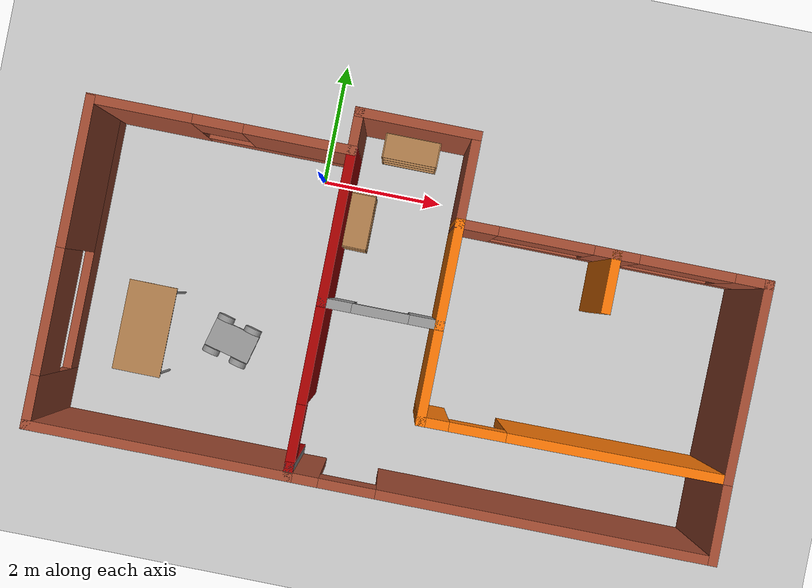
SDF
<sdf version="1.6">
 <world name="default">
  <model name="ground_plane">
   <static>1</static>
   <link name="link">
    <collision name="collision">
     <geometry><plane><normal>0 0 1</normal><size>100 100</size></plane></geometry>
     <surface><friction><ode><mu>100</mu><mu2>50</mu2></ode></friction></surface>
    </collision>
    <visual name="visual">
     <cast_shadows>0</cast_shadows>
     <geometry><plane><normal>0 0 1</normal><size>100 100</size></plane></geometry>
     <material>
      <script><uri>file://media/materials/scripts/gazebo.material</uri><name>Gazebo/Grey</name></script>
     </material>
    </visual>
   </link>
  </model>
  <model name="myhome">
   <pose>1.77518 -1.86888 0 0 -0 0</pose>
   <link name="Wall_21">
    <pose>-5.40037 -0.307409 0 0 -0 1.5708</pose>
    <visual name="Wall_21_Visual_0">
     <pose>-2.19882 0 1.25 0 -0 0</pose>
     <geometry><box><size>0.852368 0.15 2.5</size></box></geometry>
     <material>
      <script><uri>file://media/materials/scripts/gazebo.material</uri><name>Gazebo/Bricks</name></script>
      <ambient>0.666667 0 0 1</ambient>
     </material>
     <meta><layer>0</layer></meta>
    </visual>
    <collision name="Wall_21_Collision_0">
     <geometry><box><size>0.852368 0.15 2.5</size></box></geometry>
     <pose>-2.19882 0 1.25 0 -0 0</pose>
    </collision>
    <visual name="Wall_21_Visual_1">
     <pose>0.426184 0 0.25 0 -0 0</pose>
     <geometry><box><size>4.39763 0.15 0.5</size></box></geometry>
     <material>
      <script><uri>file://media/materials/scripts/gazebo.material</uri><name>Gazebo/Bricks</name></script>
      <ambient>0.666667 0 0 1</ambient>
     </material>
     <meta><layer>0</layer></meta>
    </visual>
    <collision name="Wall_21_Collision_1">
     <geometry><box><size>4.39763 0.15 0.5</size></box></geometry>
     <pose>0.426184 0 0.25 0 -0 0</pose>
    </collision>
    <visual name="Wall_21_Visual_2">
     <pose>1.42618 0 1.5 0 -0 0</pose>
     <geometry><box><size>2.39763 0.15 2</size></box></geometry>
     <material>
      <script><uri>file://media/materials/scripts/gazebo.material</uri><name>Gazebo/Bricks</name></script>
      <ambient>0.666667 0 0 1</ambient>
     </material>
     <meta><layer>0</layer></meta>
    </visual>
    <collision name="Wall_21_Collision_2">
     <geometry><box><size>2.39763 0.15 2</size></box></geometry>
     <pose>1.42618 0 1.5 0 -0 0</pose>
    </collision>
    <visual name="Wall_21_Visual_3">
     <pose>-0.772632 0 1.9 0 -0 0</pose>
     <geometry><box><size>2 0.15 1.2</size></box></geometry>
     <material>
      <script><uri>file://media/materials/scripts/gazebo.material</uri><name>Gazebo/Bricks</name></script>
      <ambient>0.666667 0 0 1</ambient>
     </material>
     <meta><layer>0</layer></meta>
    </visual>
    <collision name="Wall_21_Collision_3">
     <geometry><box><size>2 0.15 1.2</size></box></geometry>
     <pose>-0.772632 0 1.9 0 -0 0</pose>
    </collision>
   </link>
   <link name="Wall_49">
    <pose>-3.35037 2.2578 0 0 -0 0</pose>
    <visual name="Wall_49_Visual_0">
     <pose>-1.28919 0 1.25 0 -0 0</pose>
     <geometry><box><size>1.67163 0.15 2.5</size></box></geometry>
     <material>
      <script><uri>file://media/materials/scripts/gazebo.material</uri><name>Gazebo/Bricks</name></script>
      <ambient>1 1 1 1</ambient>
     </material>
     <meta><layer>0</layer></meta>
    </visual>
    <collision name="Wall_49_Collision_0">
     <geometry><box><size>1.67163 0.15 2.5</size></box></geometry>
     <pose>-1.28919 0 1.25 0 -0 0</pose>
    </collision>
    <visual name="Wall_49_Visual_1">
     <pose>0.835814 0 0.25 0 -0 0</pose>
     <geometry><box><size>2.57837 0.15 0.5</size></box></geometry>
     <material>
      <script><uri>file://media/materials/scripts/gazebo.material</uri><name>Gazebo/Bricks</name></script>
      <ambient>1 1 1 1</ambient>
     </material>
     <meta><layer>0</layer></meta>
    </visual>
    <collision name="Wall_49_Collision_1">
     <geometry><box><size>2.57837 0.15 0.5</size></box></geometry>
     <pose>0.835814 0 0.25 0 -0 0</pose>
    </collision>
    <visual name="Wall_49_Visual_2">
     <pose>1.23581 0 1.5 0 -0 0</pose>
     <geometry><box><size>1.77837 0.15 2</size></box></geometry>
     <material>
      <script><uri>file://media/materials/scripts/gazebo.material</uri><name>Gazebo/Bricks</name></script>
      <ambient>1 1 1 1</ambient>
     </material>
     <meta><layer>0</layer></meta>
    </visual>
    <collision name="Wall_49_Collision_2">
     <geometry><box><size>1.77837 0.15 2</size></box></geometry>
     <pose>1.23581 0 1.5 0 -0 0</pose>
    </collision>
    <visual name="Wall_49_Visual_3">
     <pose>-0.053373 0 1.9 0 -0 0</pose>
     <geometry><box><size>0.8 0.15 1.2</size></box></geometry>
     <material>
      <script><uri>file://media/materials/scripts/gazebo.material</uri><name>Gazebo/Bricks</name></script>
      <ambient>1 1 1 1</ambient>
     </material>
     <meta><layer>0</layer></meta>
    </visual>
    <collision name="Wall_49_Collision_3">
     <geometry><box><size>0.8 0.15 1.2</size></box></geometry>
     <pose>-0.053373 0 1.9 0 -0 0</pose>
    </collision>
   </link>
   <link name="Wall_50">
    <collision name="Wall_50_Collision">
     <geometry><box><size>2.53042 0.15 2.5</size></box></geometry>
     <pose>0 0 1.25 0 -0 0</pose>
    </collision>
    <visual name="Wall_50_Visual">
     <pose>0 0 1.25 0 -0 0</pose>
     <geometry><box><size>2.53042 0.15 2.5</size></box></geometry>
     <material>
      <script><uri>file://media/materials/scripts/gazebo.material</uri><name>Gazebo/Grey</name></script>
      <ambient>0.666667 0 0 1</ambient>
     </material>
     <meta><layer>0</layer></meta>
    </visual>
    <pose>-1.30037 1.06759 0 0 0 -1.5708</pose>
   </link>
   <link name="Wall_51">
    <pose>-0.37537 -0.122618 0 0 -0 0</pose>
    <visual name="Wall_51_Visual_0">
     <pose>-0.730669 0 1.25 0 -0 0</pose>
     <geometry><box><size>0.538663 0.15 2.5</size></box></geometry>
     <material>
      <script><uri>file://media/materials/scripts/gazebo.material</uri><name>Gazebo/Grey</name></script>
      <ambient>1 1 1 1</ambient>
     </material>
     <meta><layer>0</layer></meta>
    </visual>
    <collision name="Wall_51_Collision_0">
     <geometry><box><size>0.538663 0.15 2.5</size></box></geometry>
     <pose>-0.730669 0 1.25 0 -0 0</pose>
    </collision>
    <visual name="Wall_51_Visual_1">
     <pose>0.719331 0 1.25 0 -0 0</pose>
     <geometry><box><size>0.561337 0.15 2.5</size></box></geometry>
     <material>
      <script><uri>file://media/materials/scripts/gazebo.material</uri><name>Gazebo/Grey</name></script>
      <ambient>1 1 1 1</ambient>
     </material>
     <meta><layer>0</layer></meta>
    </visual>
    <collision name="Wall_51_Collision_1">
     <geometry><box><size>0.561337 0.15 2.5</size></box></geometry>
     <pose>0.719331 0 1.25 0 -0 0</pose>
    </collision>
    <visual name="Wall_51_Visual_2">
     <pose>-0.011337 0 2.25 0 -0 0</pose>
     <geometry><box><size>0.9 0.15 0.5</size></box></geometry>
     <material>
      <script><uri>file://media/materials/scripts/gazebo.material</uri><name>Gazebo/Grey</name></script>
      <ambient>1 1 1 1</ambient>
     </material>
     <meta><layer>0</layer></meta>
    </visual>
    <collision name="Wall_51_Collision_2">
     <geometry><box><size>0.9 0.15 0.5</size></box></geometry>
     <pose>-0.011337 0 2.25 0 -0 0</pose>
    </collision>
   </link>
   <link name="Wall_52">
    <collision name="Wall_52_Collision">
     <geometry><box><size>1.75 0.15 2.5</size></box></geometry>
     <pose>0 0 1.25 0 -0 0</pose>
    </collision>
    <visual name="Wall_52_Visual">
     <pose>0 0 1.25 0 -0 0</pose>
     <geometry><box><size>1.75 0.15 2.5</size></box></geometry>
     <material>
      <script><uri>file://media/materials/scripts/gazebo.material</uri><name>Gazebo/Grey</name></script>
      <ambient>0.996078 0.47451 0.0196078 1</ambient>
     </material>
     <meta><layer>0</layer></meta>
    </visual>
    <pose>0.54963 0.677382 0 0 -0 1.5708</pose>
   </link>
   <link name="Wall_53">
    <pose>2.97463 1.47738 0 0 -0 0</pose>
    <visual name="Wall_53_Visual_0">
     <pose>-2.15919 0 1.25 0 -0 0</pose>
     <geometry><box><size>0.68161 0.15 2.5</size></box></geometry>
     <material>
      <script><uri>file://media/materials/scripts/gazebo.material</uri><name>Gazebo/Bricks</name></script>
      <ambient>0.996078 0.47451 0.0196078 1</ambient>
     </material>
     <meta><layer>0</layer></meta>
    </visual>
    <collision name="Wall_53_Collision_0">
     <geometry><box><size>0.68161 0.15 2.5</size></box></geometry>
     <pose>-2.15919 0 1.25 0 -0 0</pose>
    </collision>
    <visual name="Wall_53_Visual_1">
     <pose>0.340805 0 0.25 0 -0 0</pose>
     <geometry><box><size>4.31839 0.15 0.5</size></box></geometry>
     <material>
      <script><uri>file://media/materials/scripts/gazebo.material</uri><name>Gazebo/Bricks</name></script>
      <ambient>0.996078 0.47451 0.0196078 1</ambient>
     </material>
     <meta><layer>0</layer></meta>
    </visual>
    <collision name="Wall_53_Collision_1">
     <geometry><box><size>4.31839 0.15 0.5</size></box></geometry>
     <pose>0.340805 0 0.25 0 -0 0</pose>
    </collision>
    <visual name="Wall_53_Visual_2">
     <pose>0.037857 0 1.5 0 -0 0</pose>
     <geometry><box><size>0.712493 0.15 2</size></box></geometry>
     <material>
      <script><uri>file://media/materials/scripts/gazebo.material</uri><name>Gazebo/Bricks</name></script>
      <ambient>0.996078 0.47451 0.0196078 1</ambient>
     </material>
     <meta><layer>0</layer></meta>
    </visual>
    <collision name="Wall_53_Collision_2">
     <geometry><box><size>0.712493 0.15 2</size></box></geometry>
     <pose>0.037857 0 1.5 0 -0 0</pose>
    </collision>
    <visual name="Wall_53_Visual_3">
     <pose>2.19705 0 1.5 0 -0 0</pose>
     <geometry><box><size>0.605897 0.15 2</size></box></geometry>
     <material>
      <script><uri>file://media/materials/scripts/gazebo.material</uri><name>Gazebo/Bricks</name></script>
      <ambient>0.996078 0.47451 0.0196078 1</ambient>
     </material>
     <meta><layer>0</layer></meta>
    </visual>
    <collision name="Wall_53_Collision_3">
     <geometry><box><size>0.605897 0.15 2</size></box></geometry>
     <pose>2.19705 0 1.5 0 -0 0</pose>
    </collision>
    <visual name="Wall_53_Visual_4">
     <pose>-1.06839 0 1.9 0 -0 0</pose>
     <geometry><box><size>1.5 0.15 1.2</size></box></geometry>
     <material>
      <script><uri>file://media/materials/scripts/gazebo.material</uri><name>Gazebo/Bricks</name></script>
      <ambient>0.996078 0.47451 0.0196078 1</ambient>
     </material>
     <meta><layer>0</layer></meta>
    </visual>
    <collision name="Wall_53_Collision_4">
     <geometry><box><size>1.5 0.15 1.2</size></box></geometry>
     <pose>-1.06839 0 1.9 0 -0 0</pose>
    </collision>
    <visual name="Wall_53_Visual_5">
     <pose>1.1441 0 1.9 0 -0 0</pose>
     <geometry><box><size>1.5 0.15 1.2</size></box></geometry>
     <material>
      <script><uri>file://media/materials/scripts/gazebo.material</uri><name>Gazebo/Bricks</name></script>
      <ambient>0.996078 0.47451 0.0196078 1</ambient>
     </material>
     <meta><layer>0</layer></meta>
    </visual>
    <collision name="Wall_53_Collision_5">
     <geometry><box><size>1.5 0.15 1.2</size></box></geometry>
     <pose>1.1441 0 1.9 0 -0 0</pose>
    </collision>
   </link>
   <link name="Wall_54">
    <collision name="Wall_54_Collision">
     <geometry><box><size>3.21992 0.15 2.5</size></box></geometry>
     <pose>0 0 1.25 0 -0 0</pose>
    </collision>
    <visual name="Wall_54_Visual">
     <pose>0 0 1.25 0 -0 0</pose>
     <geometry><box><size>3.21992 0.15 2.5</size></box></geometry>
     <material>
      <script><uri>file://media/materials/scripts/gazebo.material</uri><name>Gazebo/Bricks</name></script>
      <ambient>0.996078 0.47451 0.0196078 1</ambient>
     </material>
     <meta><layer>0</layer></meta>
    </visual>
    <pose>5.38442 -0.057409 0 0 0 -1.58071</pose>
   </link>
   <link name="Wall_55">
    <pose>2.95942 -1.60741 0 0 0 -3.13528</pose>
    <visual name="Wall_55_Visual_0">
     <pose>-0.706986 0 1.25 0 -0 0</pose>
     <geometry><box><size>3.55571 0.15 2.5</size></box></geometry>
     <material>
      <script><uri>file://media/materials/scripts/gazebo.material</uri><name>Gazebo/Grey</name></script>
      <ambient>0.996078 0.47451 0.0196078 1</ambient>
     </material>
     <meta><layer>0</layer></meta>
    </visual>
    <collision name="Wall_55_Collision_0">
     <geometry><box><size>3.55571 0.15 2.5</size></box></geometry>
     <pose>-0.706986 0 1.25 0 -0 0</pose>
    </collision>
    <visual name="Wall_55_Visual_1">
     <pose>2.22785 0 1.25 0 -0 0</pose>
     <geometry><box><size>0.513973 0.15 2.5</size></box></geometry>
     <material>
      <script><uri>file://media/materials/scripts/gazebo.material</uri><name>Gazebo/Grey</name></script>
      <ambient>0.996078 0.47451 0.0196078 1</ambient>
     </material>
     <meta><layer>0</layer></meta>
    </visual>
    <collision name="Wall_55_Collision_1">
     <geometry><box><size>0.513973 0.15 2.5</size></box></geometry>
     <pose>2.22785 0 1.25 0 -0 0</pose>
    </collision>
    <visual name="Wall_55_Visual_2">
     <pose>1.52087 0 2.25 0 -0 0</pose>
     <geometry><box><size>0.9 0.15 0.5</size></box></geometry>
     <material>
      <script><uri>file://media/materials/scripts/gazebo.material</uri><name>Gazebo/Grey</name></script>
      <ambient>0.996078 0.47451 0.0196078 1</ambient>
     </material>
     <meta><layer>0</layer></meta>
    </visual>
    <collision name="Wall_55_Collision_2">
     <geometry><box><size>0.9 0.15 0.5</size></box></geometry>
     <pose>1.52087 0 2.25 0 -0 0</pose>
    </collision>
   </link>
   <link name="Wall_56">
    <collision name="Wall_56_Collision">
     <geometry><box><size>1.65 0.15 2.5</size></box></geometry>
     <pose>0 0 1.25 0 -0 0</pose>
    </collision>
    <visual name="Wall_56_Visual">
     <pose>0 0 1.25 0 -0 0</pose>
     <geometry><box><size>1.65 0.15 2.5</size></box></geometry>
     <material>
      <script><uri>file://media/materials/scripts/gazebo.material</uri><name>Gazebo/Grey</name></script>
      <ambient>0.996078 0.47451 0.0196078 1</ambient>
     </material>
     <meta><layer>0</layer></meta>
    </visual>
    <pose>0.54963 -0.872618 0 0 -0 1.5708</pose>
   </link>
   <link name="Wall_64">
    <collision name="Wall_64_Collision">
     <geometry><box><size>1.41536 0.15 2.5</size></box></geometry>
     <pose>0 0 1.25 0 -0 0</pose>
    </collision>
    <visual name="Wall_64_Visual">
     <pose>0 0 1.25 0 -0 0</pose>
     <geometry><box><size>1.41536 0.15 2.5</size></box></geometry>
     <material>
      <script><uri>file://media/materials/scripts/gazebo.material</uri><name>Gazebo/Bricks</name></script>
      <ambient>1 1 1 1</ambient>
     </material>
     <meta><layer>0</layer></meta>
    </visual>
    <pose>5.37192 -2.2248 0 0 -0 1.57508</pose>
   </link>
   <link name="Wall_71">
    <collision name="Wall_71_Collision">
     <geometry><box><size>0.75 0.15 2.5</size></box></geometry>
     <pose>0 0 1.25 0 -0 0</pose>
    </collision>
    <visual name="Wall_71_Visual">
     <pose>0 0 1.25 0 -0 0</pose>
     <geometry><box><size>0.75 0.15 2.5</size></box></geometry>
     <material>
      <script><uri>file://media/materials/scripts/gazebo.material</uri><name>Gazebo/Bricks</name></script>
      <ambient>1 1 1 1</ambient>
     </material>
     <meta><layer>0</layer></meta>
    </visual>
    <pose>-1.30037 2.5578 0 0 -0 1.5708</pose>
   </link>
   <link name="Wall_72">
    <collision name="Wall_72_Collision">
     <geometry><box><size>2 0.15 2.5</size></box></geometry>
     <pose>0 0 1.25 0 -0 0</pose>
    </collision>
    <visual name="Wall_72_Visual">
     <pose>0 0 1.25 0 -0 0</pose>
     <geometry><box><size>2 0.15 2.5</size></box></geometry>
     <material>
      <script><uri>file://media/materials/scripts/gazebo.material</uri><name>Gazebo/Bricks</name></script>
      <ambient>1 1 1 1</ambient>
     </material>
     <meta><layer>0</layer></meta>
    </visual>
    <pose>-0.37537 2.8578 0 0 -0 0</pose>
   </link>
   <link name="Wall_73">
    <collision name="Wall_73_Collision">
     <geometry><box><size>1.53042 0.15 2.5</size></box></geometry>
     <pose>0 0 1.25 0 -0 0</pose>
    </collision>
    <visual name="Wall_73_Visual">
     <pose>0 0 1.25 0 -0 0</pose>
     <geometry><box><size>1.53042 0.15 2.5</size></box></geometry>
     <material>
      <script><uri>file://media/materials/scripts/gazebo.material</uri><name>Gazebo/Bricks</name></script>
      <ambient>1 1 1 1</ambient>
     </material>
     <meta><layer>0</layer></meta>
    </visual>
    <pose>0.54963 2.16759 0 0 0 -1.5708</pose>
   </link>
   <link name="Wall_75">
    <collision name="Wall_75_Collision">
     <geometry><box><size>1 0.15 2.5</size></box></geometry>
     <pose>0 0 1.25 0 -0 0</pose>
    </collision>
    <visual name="Wall_75_Visual">
     <pose>0 0 1.25 0 -0 0</pose>
     <geometry><box><size>1 0.15 2.5</size></box></geometry>
     <material>
      <script><uri>file://media/materials/scripts/gazebo.material</uri><name>Gazebo/Grey</name></script>
      <ambient>0.996078 0.47451 0.0196078 1</ambient>
     </material>
     <meta><layer>0</layer></meta>
    </visual>
    <pose>3.01249 1.04938 0 0 0 -1.5708</pose>
   </link>
   <link name="Wall_82">
    <pose>-1.30037 -1.42262 0 0 0 -1.5708</pose>
    <visual name="Wall_82_Visual_0">
     <pose>-0.536175 0 1.25 0 -0 0</pose>
     <geometry><box><size>1.67765 0.15 2.5</size></box></geometry>
     <material>
      <script><uri>file://media/materials/scripts/gazebo.material</uri><name>Gazebo/Grey</name></script>
      <ambient>0.666667 0 0 1</ambient>
     </material>
     <meta><layer>0</layer></meta>
    </visual>
    <collision name="Wall_82_Collision_0">
     <geometry><box><size>1.67765 0.15 2.5</size></box></geometry>
     <pose>-0.536175 0 1.25 0 -0 0</pose>
    </collision>
    <visual name="Wall_82_Visual_1">
     <pose>1.28883 0 1.25 0 -0 0</pose>
     <geometry><box><size>0.172351 0.15 2.5</size></box></geometry>
     <material>
      <script><uri>file://media/materials/scripts/gazebo.material</uri><name>Gazebo/Grey</name></script>
      <ambient>0.666667 0 0 1</ambient>
     </material>
     <meta><layer>0</layer></meta>
    </visual>
    <collision name="Wall_82_Collision_1">
     <geometry><box><size>0.172351 0.15 2.5</size></box></geometry>
     <pose>1.28883 0 1.25 0 -0 0</pose>
    </collision>
    <visual name="Wall_82_Visual_2">
     <pose>0.752649 0 2.25 0 -0 0</pose>
     <geometry><box><size>0.9 0.15 0.5</size></box></geometry>
     <material>
      <script><uri>file://media/materials/scripts/gazebo.material</uri><name>Gazebo/Grey</name></script>
      <ambient>0.666667 0 0 1</ambient>
     </material>
     <meta><layer>0</layer></meta>
    </visual>
    <collision name="Wall_82_Collision_2">
     <geometry><box><size>0.9 0.15 0.5</size></box></geometry>
     <pose>0.752649 0 2.25 0 -0 0</pose>
    </collision>
   </link>
   <link name="Wall_83">
    <collision name="Wall_83_Collision">
     <geometry><box><size>0.15 0.15 2.5</size></box></geometry>
     <pose>0 0 1.25 0 -0 0</pose>
    </collision>
    <visual name="Wall_83_Visual">
     <pose>0 0 1.25 0 -0 0</pose>
     <geometry><box><size>0.15 0.15 2.5</size></box></geometry>
     <material>
      <script><uri>file://media/materials/scripts/gazebo.material</uri><name>Gazebo/Grey</name></script>
      <ambient>1 1 1 1</ambient>
     </material>
     <meta><layer>0</layer></meta>
    </visual>
    <pose>-1.30037 -2.72262 0 0 -0 0</pose>
   </link>
   <link name="Wall_85">
    <collision name="Wall_85_Collision">
     <geometry><box><size>4.25 0.15 2.5</size></box></geometry>
     <pose>0 0 1.25 0 -0 0</pose>
    </collision>
    <visual name="Wall_85_Visual">
     <pose>0 0 1.25 0 -0 0</pose>
     <geometry><box><size>4.25 0.15 2.5</size></box></geometry>
     <material>
      <script><uri>file://media/materials/scripts/gazebo.material</uri><name>Gazebo/Bricks</name></script>
      <ambient>1 1 1 1</ambient>
     </material>
     <meta><layer>0</layer></meta>
    </visual>
    <pose>-3.35037 -2.85741 0 0 -0 0</pose>
   </link>
   <link name="Wall_86">
    <pose>2.03713 -2.85741 0 0 -0 0</pose>
    <visual name="Wall_86_Visual_0">
     <pose>-3.1352 0 1.25 0 -0 0</pose>
     <geometry><box><size>0.554602 0.15 2.5</size></box></geometry>
     <material>
      <script><uri>file://media/materials/scripts/gazebo.material</uri><name>Gazebo/Bricks</name></script>
      <ambient>1 1 1 1</ambient>
     </material>
     <meta><layer>0</layer></meta>
    </visual>
    <collision name="Wall_86_Collision_0">
     <geometry><box><size>0.554602 0.15 2.5</size></box></geometry>
     <pose>-3.1352 0 1.25 0 -0 0</pose>
    </collision>
    <visual name="Wall_86_Visual_1">
     <pose>0.727301 0 1.25 0 -0 0</pose>
     <geometry><box><size>5.3704 0.15 2.5</size></box></geometry>
     <material>
      <script><uri>file://media/materials/scripts/gazebo.material</uri><name>Gazebo/Bricks</name></script>
      <ambient>1 1 1 1</ambient>
     </material>
     <meta><layer>0</layer></meta>
    </visual>
    <collision name="Wall_86_Collision_1">
     <geometry><box><size>5.3704 0.15 2.5</size></box></geometry>
     <pose>0.727301 0 1.25 0 -0 0</pose>
    </collision>
    <visual name="Wall_86_Visual_2">
     <pose>-2.4079 0 2.25 0 -0 0</pose>
     <geometry><box><size>0.9 0.15 0.5</size></box></geometry>
     <material>
      <script><uri>file://media/materials/scripts/gazebo.material</uri><name>Gazebo/Bricks</name></script>
      <ambient>1 1 1 1</ambient>
     </material>
     <meta><layer>0</layer></meta>
    </visual>
    <collision name="Wall_86_Collision_2">
     <geometry><box><size>0.9 0.15 0.5</size></box></geometry>
     <pose>-2.4079 0 2.25 0 -0 0</pose>
    </collision>
   </link>
   <static>1</static>
  </model>
  <model name="bookshelf">
   <static>1</static>
   <link name="link">
    <inertial><mass>1</mass></inertial>
    <collision name="back">
     <pose>0 0.005 0.6 0 -0 0</pose>
     <geometry><box><size>0.9 0.01 1.2</size></box></geometry>
    </collision>
    <visual name="visual1">
     <pose>0 0.005 0.6 0 -0 0</pose>
     <geometry><box><size>0.9 0.01 1.2</size></box></geometry>
     <material>
      <script><uri>file://media/materials/scripts/gazebo.material</uri><name>Gazebo/Wood</name></script>
     </material>
    </visual>
    <collision name="left_side">
     <pose>0.45 -0.195 0.6 0 -0 0</pose>
     <geometry><box><size>0.02 0.4 1.2</size></box></geometry>
    </collision>
    <visual name="visual2">
     <pose>0.45 -0.195 0.6 0 -0 0</pose>
     <geometry><box><size>0.02 0.4 1.2</size></box></geometry>
     <material>
      <script><uri>file://media/materials/scripts/gazebo.material</uri><name>Gazebo/Wood</name></script>
     </material>
    </visual>
    <collision name="right_side">
     <pose>-0.45 -0.195 0.6 0 -0 0</pose>
     <geometry><box><size>0.02 0.4 1.2</size></box></geometry>
    </collision>
    <visual name="visual3">
     <pose>-0.45 -0.195 0.6 0 -0 0</pose>
     <geometry><box><size>0.02 0.4 1.2</size></box></geometry>
     <material>
      <script><uri>file://media/materials/scripts/gazebo.material</uri><name>Gazebo/Wood</name></script>
     </material>
    </visual>
    <collision name="bottom">
     <pose>0 -0.195 0.03 0 -0 0</pose>
     <geometry><box><size>0.88 0.4 0.06</size></box></geometry>
    </collision>
    <visual name="visual4">
     <pose>0 -0.195 0.03 0 -0 0</pose>
     <geometry><box><size>0.88 0.4 0.06</size></box></geometry>
     <material>
      <script><uri>file://media/materials/scripts/gazebo.material</uri><name>Gazebo/Wood</name></script>
     </material>
    </visual>
    <collision name="top">
     <pose>0 -0.195 1.19 0 -0 0</pose>
     <geometry><box><size>0.88 0.4 0.02</size></box></geometry>
    </collision>
    <visual name="visual5">
     <pose>0 -0.195 1.19 0 -0 0</pose>
     <geometry><box><size>0.88 0.4 0.02</size></box></geometry>
     <material>
      <script><uri>file://media/materials/scripts/gazebo.material</uri><name>Gazebo/Wood</name></script>
     </material>
    </visual>
    <collision name="low_shelf">
     <pose>0 -0.195 0.43 0 -0 0</pose>
     <geometry><box><size>0.88 0.4 0.02</size></box></geometry>
    </collision>
    <visual name="visual6">
     <pose>0 -0.195 0.43 0 -0 0</pose>
     <geometry><box><size>0.88 0.4 0.02</size></box></geometry>
     <material>
      <script><uri>file://media/materials/scripts/gazebo.material</uri><name>Gazebo/Wood</name></script>
     </material>
    </visual>
    <collision name="high_shelf">
     <pose>0 -0.195 0.8 0 -0 0</pose>
     <geometry><box><size>0.88 0.4 0.02</size></box></geometry>
    </collision>
    <visual name="visual7">
     <pose>0 -0.195 0.8 0 -0 0</pose>
     <geometry><box><size>0.88 0.4 0.02</size></box></geometry>
     <material>
      <script><uri>file://media/materials/scripts/gazebo.material</uri><name>Gazebo/Wood</name></script>
     </material>
    </visual>
   </link>
   <pose>1.36245 0.894727 0 0 -0 0</pose>
  </model>
  <model name="bookshelf_0">
   <static>1</static>
   <link name="link">
    <inertial><mass>1</mass></inertial>
    <collision name="back">
     <pose>0 0.005 0.6 0 -0 0</pose>
     <geometry><box><size>0.9 0.01 1.2</size></box></geometry>
    </collision>
    <visual name="visual1">
     <pose>0 0.005 0.6 0 -0 0</pose>
     <geometry><box><size>0.9 0.01 1.2</size></box></geometry>
     <material>
      <script><uri>file://media/materials/scripts/gazebo.material</uri><name>Gazebo/Wood</name></script>
     </material>
    </visual>
    <collision name="left_side">
     <pose>0.45 -0.195 0.6 0 -0 0</pose>
     <geometry><box><size>0.02 0.4 1.2</size></box></geometry>
    </collision>
    <visual name="visual2">
     <pose>0.45 -0.195 0.6 0 -0 0</pose>
     <geometry><box><size>0.02 0.4 1.2</size></box></geometry>
     <material>
      <script><uri>file://media/materials/scripts/gazebo.material</uri><name>Gazebo/Wood</name></script>
     </material>
    </visual>
    <collision name="right_side">
     <pose>-0.45 -0.195 0.6 0 -0 0</pose>
     <geometry><box><size>0.02 0.4 1.2</size></box></geometry>
    </collision>
    <visual name="visual3">
     <pose>-0.45 -0.195 0.6 0 -0 0</pose>
     <geometry><box><size>0.02 0.4 1.2</size></box></geometry>
     <material>
      <script><uri>file://media/materials/scripts/gazebo.material</uri><name>Gazebo/Wood</name></script>
     </material>
    </visual>
    <collision name="bottom">
     <pose>0 -0.195 0.03 0 -0 0</pose>
     <geometry><box><size>0.88 0.4 0.06</size></box></geometry>
    </collision>
    <visual name="visual4">
     <pose>0 -0.195 0.03 0 -0 0</pose>
     <geometry><box><size>0.88 0.4 0.06</size></box></geometry>
     <material>
      <script><uri>file://media/materials/scripts/gazebo.material</uri><name>Gazebo/Wood</name></script>
     </material>
    </visual>
    <collision name="top">
     <pose>0 -0.195 1.19 0 -0 0</pose>
     <geometry><box><size>0.88 0.4 0.02</size></box></geometry>
    </collision>
    <visual name="visual5">
     <pose>0 -0.195 1.19 0 -0 0</pose>
     <geometry><box><size>0.88 0.4 0.02</size></box></geometry>
     <material>
      <script><uri>file://media/materials/scripts/gazebo.material</uri><name>Gazebo/Wood</name></script>
     </material>
    </visual>
    <collision name="low_shelf">
     <pose>0 -0.195 0.43 0 -0 0</pose>
     <geometry><box><size>0.88 0.4 0.02</size></box></geometry>
    </collision>
    <visual name="visual6">
     <pose>0 -0.195 0.43 0 -0 0</pose>
     <geometry><box><size>0.88 0.4 0.02</size></box></geometry>
     <material>
      <script><uri>file://media/materials/scripts/gazebo.material</uri><name>Gazebo/Wood</name></script>
     </material>
    </visual>
    <collision name="high_shelf">
     <pose>0 -0.195 0.8 0 -0 0</pose>
     <geometry><box><size>0.88 0.4 0.02</size></box></geometry>
    </collision>
    <visual name="visual7">
     <pose>0 -0.195 0.8 0 -0 0</pose>
     <geometry><box><size>0.88 0.4 0.02</size></box></geometry>
     <material>
      <script><uri>file://media/materials/scripts/gazebo.material</uri><name>Gazebo/Wood</name></script>
     </material>
    </visual>
   </link>
   <pose>0.54884 -0.601497 0 0 -0 1.56747</pose>
  </model>
  <model name="table">
   <static>1</static>
   <link name="link">
    <collision name="surface">
     <pose>0 0 1 0 -0 0</pose>
     <geometry><box><size>1.5 0.8 0.03</size></box></geometry>
     <surface><friction><ode><mu>0.6</mu><mu2>0.6</mu2></ode></friction></surface>
    </collision>
    <visual name="visual1">
     <pose>0 0 1 0 -0 0</pose>
     <geometry><box><size>1.5 0.8 0.03</size></box></geometry>
     <material>
      <script><uri>file://media/materials/scripts/gazebo.material</uri><name>Gazebo/Wood</name></script>
     </material>
    </visual>
    <collision name="front_left_leg">
     <pose>0.68 0.38 0.5 0 -0 0</pose>
     <geometry><cylinder><radius>0.02</radius><length>1</length></cylinder></geometry>
    </collision>
    <visual name="front_left_leg">
     <pose>0.68 0.38 0.5 0 -0 0</pose>
     <geometry><cylinder><radius>0.02</radius><length>1</length></cylinder></geometry>
     <material>
      <script><uri>file://media/materials/scripts/gazebo.material</uri><name>Gazebo/Grey</name></script>
     </material>
    </visual>
    <collision name="front_right_leg">
     <pose>0.68 -0.38 0.5 0 -0 0</pose>
     <geometry><cylinder><radius>0.02</radius><length>1</length></cylinder></geometry>
    </collision>
    <visual name="front_right_leg">
     <pose>0.68 -0.38 0.5 0 -0 0</pose>
     <geometry><cylinder><radius>0.02</radius><length>1</length></cylinder></geometry>
     <material>
      <script><uri>file://media/materials/scripts/gazebo.material</uri><name>Gazebo/Grey</name></script>
     </material>
    </visual>
    <collision name="back_right_leg">
     <pose>-0.68 -0.38 0.5 0 -0 0</pose>
     <geometry><cylinder><radius>0.02</radius><length>1</length></cylinder></geometry>
    </collision>
    <visual name="back_right_leg">
     <pose>-0.68 -0.38 0.5 0 -0 0</pose>
     <geometry><cylinder><radius>0.02</radius><length>1</length></cylinder></geometry>
     <material>
      <script><uri>file://media/materials/scripts/gazebo.material</uri><name>Gazebo/Grey</name></script>
     </material>
    </visual>
    <collision name="back_left_leg">
     <pose>-0.68 0.38 0.5 0 -0 0</pose>
     <geometry><cylinder><radius>0.02</radius><length>1</length></cylinder></geometry>
    </collision>
    <visual name="back_left_leg">
     <pose>-0.68 0.38 0.5 0 -0 0</pose>
     <geometry><cylinder><radius>0.02</radius><length>1</length></cylinder></geometry>
     <material>
      <script><uri>file://media/materials/scripts/gazebo.material</uri><name>Gazebo/Grey</name></script>
     </material>
    </visual>
   </link>
   <pose>-2.37664 -3.00957 0 0 0 -1.57607</pose>
  </model>
  <model name="car_bot">
   <link name="link">
    <pose>0 0 0.2 0 -0 0</pose>
    <inertial>
     <mass>1</mass>
     <inertia>
      <ixx>0.166667</ixx>
      <ixy>0</ixy>
      <ixz>0</ixz>
      <iyy>0.166667</iyy>
      <iyz>0</iyz>
      <izz>0.166667</izz>
     </inertia>
    </inertial>
    <visual name="visual">
     <geometry><box><size>0.8 0.5 0.1</size></box></geometry>
     <material>
      <script><name>Gazebo/Grey</name><uri>file://media/materials/scripts/gazebo.material</uri></script>
      <shader type="pixel"><normal_map>__default__</normal_map></shader>
      <ambient>0.3 0.3 0.3 1</ambient>
      <diffuse>0.7 0.7 0.7 1</diffuse>
      <specular>0.01 0.01 0.01 1</specular>
      <emissive>0 0 0 1</emissive>
     </material>
    </visual>
    <collision name="collision">
     <geometry><box><size>0.8 0.5 0.1</size></box></geometry>
     <surface>
      <friction>
       <ode><mu>1</mu><mu2>1</mu2><fdir1>0 0 0</fdir1><slip1>0</slip1><slip2>0</slip2></ode>
       <torsional>
        <coefficient>1</coefficient>
        <patch_radius>0</patch_radius>
        <surface_radius>0</surface_radius>
        <use_patch_radius>1</use_patch_radius>
        <ode><slip>0</slip></ode>
       </torsional>
      </friction>
      <bounce><restitution_coefficient>0</restitution_coefficient><threshold>1e+06</threshold></bounce>
      <contact>
       <collide_without_contact>0</collide_without_contact>
       <collide_without_contact_bitmask>1</collide_without_contact_bitmask>
       <collide_bitmask>1</collide_bitmask>
       <ode>
        <soft_cfm>0</soft_cfm>
        <soft_erp>0.2</soft_erp>
        <kp>1e+13</kp>
        <kd>1</kd>
        <max_vel>0.01</max_vel>
        <min_depth>0</min_depth>
       </ode>
       <bullet>
        <split_impulse>1</split_impulse>
        <split_impulse_penetration_threshold>-0.01</split_impulse_penetration_threshold>
        <soft_cfm>0</soft_cfm>
        <soft_erp>0.2</soft_erp>
        <kp>1e+13</kp>
        <kd>1</kd>
       </bullet>
      </contact>
     </surface>
    </collision>
   </link>
   <link name="link_1">
    <pose>-0.25 -0.30063 0.245186 1.575 -0 0</pose>
    <inertial>
     <mass>1</mass>
     <inertia><ixx>0.145833</ixx><ixy>0</ixy><ixz>0</ixz><iyy>0.145833</iyy><iyz>0</iyz><izz>0.125</izz></inertia>
    </inertial>
    <visual name="visual">
     <geometry><cylinder><radius>0.15</radius><length>0.1</length></cylinder></geometry>
     <material>
      <lighting>1</lighting>
      <script><uri>file://media/materials/scripts/gazebo.material</uri><name>Gazebo/Grey</name></script>
      <shader type="pixel"><normal_map>__default__</normal_map></shader>
      <ambient>0.3 0.3 0.3 1</ambient>
      <diffuse>0.7 0.7 0.7 1</diffuse>
      <specular>0.01 0.01 0.01 1</specular>
      <emissive>0 0 0 1</emissive>
     </material>
    </visual>
    <collision name="collision">
     <geometry><cylinder><radius>0.15</radius><length>0.1</length></cylinder></geometry>
     <surface>
      <friction>
       <ode><mu>1</mu><mu2>1</mu2><fdir1>0 0 0</fdir1><slip1>0</slip1><slip2>0</slip2></ode>
       <torsional>
        <coefficient>1</coefficient>
        <patch_radius>0</patch_radius>
        <surface_radius>0</surface_radius>
        <use_patch_radius>1</use_patch_radius>
        <ode><slip>0</slip></ode>
       </torsional>
      </friction>
      <bounce><restitution_coefficient>0</restitution_coefficient><threshold>1e+06</threshold></bounce>
      <contact>
       <collide_without_contact>0</collide_without_contact>
       <collide_without_contact_bitmask>1</collide_without_contact_bitmask>
       <collide_bitmask>1</collide_bitmask>
       <ode>
        <soft_cfm>0</soft_cfm>
        <soft_erp>0.2</soft_erp>
        <kp>1e+13</kp>
        <kd>1</kd>
        <max_vel>0.01</max_vel>
        <min_depth>0</min_depth>
       </ode>
       <bullet>
        <split_impulse>1</split_impulse>
        <split_impulse_penetration_threshold>-0.01</split_impulse_penetration_threshold>
        <soft_cfm>0</soft_cfm>
        <soft_erp>0.2</soft_erp>
        <kp>1e+13</kp>
        <kd>1</kd>
       </bullet>
      </contact>
     </surface>
    </collision>
   </link>
   <link name="link_1_clone">
    <pose>-0.25 0.300631 0.245003 1.57501 -0 0</pose>
    <inertial>
     <mass>1</mass>
     <inertia><ixx>0.145833</ixx><ixy>0</ixy><ixz>0</ixz><iyy>0.145833</iyy><iyz>0</iyz><izz>0.125</izz></inertia>
    </inertial>
    <visual name="visual">
     <geometry><cylinder><radius>0.15</radius><length>0.1</length></cylinder></geometry>
     <material>
      <lighting>1</lighting>
      <script><uri>file://media/materials/scripts/gazebo.material</uri><name>Gazebo/Grey</name></script>
      <shader type="pixel"><normal_map>__default__</normal_map></shader>
      <ambient>0.3 0.3 0.3 1</ambient>
      <diffuse>0.7 0.7 0.7 1</diffuse>
      <specular>0.01 0.01 0.01 1</specular>
      <emissive>0 0 0 1</emissive>
     </material>
    </visual>
    <collision name="collision">
     <geometry><cylinder><radius>0.15</radius><length>0.1</length></cylinder></geometry>
     <surface>
      <friction>
       <ode><mu>1</mu><mu2>1</mu2><fdir1>0 0 0</fdir1><slip1>0</slip1><slip2>0</slip2></ode>
       <torsional>
        <coefficient>1</coefficient>
        <patch_radius>0</patch_radius>
        <surface_radius>0</surface_radius>
        <use_patch_radius>1</use_patch_radius>
        <ode><slip>0</slip></ode>
       </torsional>
      </friction>
      <bounce><restitution_coefficient>0</restitution_coefficient><threshold>1e+06</threshold></bounce>
      <contact>
       <collide_without_contact>0</collide_without_contact>
       <collide_without_contact_bitmask>1</collide_without_contact_bitmask>
       <collide_bitmask>1</collide_bitmask>
       <ode>
        <soft_cfm>0</soft_cfm>
        <soft_erp>0.2</soft_erp>
        <kp>1e+13</kp>
        <kd>1</kd>
        <max_vel>0.01</max_vel>
        <min_depth>0</min_depth>
       </ode>
       <bullet>
        <split_impulse>1</split_impulse>
        <split_impulse_penetration_threshold>-0.01</split_impulse_penetration_threshold>
        <soft_cfm>0</soft_cfm>
        <soft_erp>0.2</soft_erp>
        <kp>1e+13</kp>
        <kd>1</kd>
       </bullet>
      </contact>
     </surface>
    </collision>
   </link>
   <link name="link_1_clone_0_clone">
    <pose>0.25 -0.300633 0.244997 1.57502 -0 0</pose>
    <inertial>
     <mass>1</mass>
     <inertia><ixx>0.145833</ixx><ixy>0</ixy><ixz>0</ixz><iyy>0.145833</iyy><iyz>0</iyz><izz>0.125</izz></inertia>
    </inertial>
    <visual name="visual">
     <geometry><cylinder><radius>0.15</radius><length>0.1</length></cylinder></geometry>
     <material>
      <lighting>1</lighting>
      <script><uri>file://media/materials/scripts/gazebo.material</uri><name>Gazebo/Grey</name></script>
      <shader type="pixel"><normal_map>__default__</normal_map></shader>
      <ambient>0.3 0.3 0.3 1</ambient>
      <diffuse>0.7 0.7 0.7 1</diffuse>
      <specular>0.01 0.01 0.01 1</specular>
      <emissive>0 0 0 1</emissive>
     </material>
    </visual>
    <collision name="collision">
     <geometry><cylinder><radius>0.15</radius><length>0.1</length></cylinder></geometry>
     <surface>
      <friction>
       <ode><mu>1</mu><mu2>1</mu2><fdir1>0 0 0</fdir1><slip1>0</slip1><slip2>0</slip2></ode>
       <torsional>
        <coefficient>1</coefficient>
        <patch_radius>0</patch_radius>
        <surface_radius>0</surface_radius>
        <use_patch_radius>1</use_patch_radius>
        <ode><slip>0</slip></ode>
       </torsional>
      </friction>
      <bounce><restitution_coefficient>0</restitution_coefficient><threshold>1e+06</threshold></bounce>
      <contact>
       <collide_without_contact>0</collide_without_contact>
       <collide_without_contact_bitmask>1</collide_without_contact_bitmask>
       <collide_bitmask>1</collide_bitmask>
       <ode>
        <soft_cfm>0</soft_cfm>
        <soft_erp>0.2</soft_erp>
        <kp>1e+13</kp>
        <kd>1</kd>
        <max_vel>0.01</max_vel>
        <min_depth>0</min_depth>
       </ode>
       <bullet>
        <split_impulse>1</split_impulse>
        <split_impulse_penetration_threshold>-0.01</split_impulse_penetration_threshold>
        <soft_cfm>0</soft_cfm>
        <soft_erp>0.2</soft_erp>
        <kp>1e+13</kp>
        <kd>1</kd>
       </bullet>
      </contact>
     </surface>
    </collision>
   </link>
   <link name="link_1_clone_0_clone_clone">
    <pose>0.25 0.300634 0.245003 1.57503 -0 0</pose>
    <inertial>
     <mass>1</mass>
     <inertia><ixx>0.145833</ixx><ixy>0</ixy><ixz>0</ixz><iyy>0.145833</iyy><iyz>0</iyz><izz>0.125</izz></inertia>
    </inertial>
    <visual name="visual">
     <geometry><cylinder><radius>0.15</radius><length>0.1</length></cylinder></geometry>
     <material>
      <lighting>1</lighting>
      <script><uri>file://media/materials/scripts/gazebo.material</uri><name>Gazebo/Grey</name></script>
      <shader type="pixel"><normal_map>__default__</normal_map></shader>
      <ambient>0.3 0.3 0.3 1</ambient>
      <diffuse>0.7 0.7 0.7 1</diffuse>
      <specular>0.01 0.01 0.01 1</specular>
      <emissive>0 0 0 1</emissive>
     </material>
    </visual>
    <collision name="collision">
     <geometry><cylinder><radius>0.15</radius><length>0.1</length></cylinder></geometry>
     <surface>
      <friction>
       <ode><mu>1</mu><mu2>1</mu2><fdir1>0 0 0</fdir1><slip1>0</slip1><slip2>0</slip2></ode>
       <torsional>
        <coefficient>1</coefficient>
        <patch_radius>0</patch_radius>
        <surface_radius>0</surface_radius>
        <use_patch_radius>1</use_patch_radius>
        <ode><slip>0</slip></ode>
       </torsional>
      </friction>
      <bounce><restitution_coefficient>0</restitution_coefficient><threshold>1e+06</threshold></bounce>
      <contact>
       <collide_without_contact>0</collide_without_contact>
       <collide_without_contact_bitmask>1</collide_without_contact_bitmask>
       <collide_bitmask>1</collide_bitmask>
       <ode>
        <soft_cfm>0</soft_cfm>
        <soft_erp>0.2</soft_erp>
        <kp>1e+13</kp>
        <kd>1</kd>
        <max_vel>0.01</max_vel>
        <min_depth>0</min_depth>
       </ode>
       <bullet>
        <split_impulse>1</split_impulse>
        <split_impulse_penetration_threshold>-0.01</split_impulse_penetration_threshold>
        <soft_cfm>0</soft_cfm>
        <soft_erp>0.2</soft_erp>
        <kp>1e+13</kp>
        <kd>1</kd>
       </bullet>
      </contact>
     </surface>
    </collision>
   </link>
   <joint name="link_JOINT_3" type="revolute">
    <parent>link</parent>
    <child>link_1_clone_0_clone_clone</child>
    <axis>
     <xyz>1 0 0</xyz>
     <use_parent_model_frame>0</use_parent_model_frame>
     <limit>
      <lower>-1.79769e+308</lower>
      <upper>1.79769e+308</upper>
      <effort>-1</effort>
      <velocity>-1</velocity>
     </limit>
     <dynamics>
      <spring_reference>0</spring_reference>
      <spring_stiffness>0</spring_stiffness>
      <damping>0</damping>
     </dynamics>
     <use_parent_model_frame>1</use_parent_model_frame>
    </axis>
    <physics>
     <ode><limit><cfm>0</cfm><erp>0.2</erp></limit><suspension><cfm>0</cfm><erp>0.2</erp></suspension></ode>
    </physics>
   </joint>
   <joint name="link_JOINT_4" type="revolute">
    <parent>link</parent>
    <child>link_1_clone_0_clone</child>
    <axis>
     <xyz>1 0 0</xyz>
     <use_parent_model_frame>0</use_parent_model_frame>
     <limit>
      <lower>-1.79769e+308</lower>
      <upper>1.79769e+308</upper>
      <effort>-1</effort>
      <velocity>-1</velocity>
     </limit>
     <dynamics>
      <spring_reference>0</spring_reference>
      <spring_stiffness>0</spring_stiffness>
      <damping>0</damping>
     </dynamics>
     <use_parent_model_frame>1</use_parent_model_frame>
    </axis>
    <physics>
     <ode><limit><cfm>0</cfm><erp>0.2</erp></limit><suspension><cfm>0</cfm><erp>0.2</erp></suspension></ode>
    </physics>
   </joint>
   <joint name="link_JOINT_5" type="revolute">
    <parent>link</parent>
    <child>link_1_clone_0_clone</child>
    <axis>
     <xyz>1 0 0</xyz>
     <use_parent_model_frame>0</use_parent_model_frame>
     <limit>
      <lower>-1.79769e+308</lower>
      <upper>1.79769e+308</upper>
      <effort>-1</effort>
      <velocity>-1</velocity>
     </limit>
     <dynamics>
      <spring_reference>0</spring_reference>
      <spring_stiffness>0</spring_stiffness>
      <damping>0</damping>
     </dynamics>
     <use_parent_model_frame>1</use_parent_model_frame>
    </axis>
    <physics>
     <ode><limit><cfm>0</cfm><erp>0.2</erp></limit><suspension><cfm>0</cfm><erp>0.2</erp></suspension></ode>
    </physics>
   </joint>
   <joint name="link_JOINT_6" type="revolute">
    <parent>link</parent>
    <child>link_1</child>
    <axis>
     <xyz>1 0 0</xyz>
     <use_parent_model_frame>0</use_parent_model_frame>
     <limit>
      <lower>-1.79769e+308</lower>
      <upper>1.79769e+308</upper>
      <effort>-1</effort>
      <velocity>-1</velocity>
     </limit>
     <dynamics>
      <spring_reference>0</spring_reference>
      <spring_stiffness>0</spring_stiffness>
      <damping>0</damping>
     </dynamics>
     <use_parent_model_frame>1</use_parent_model_frame>
    </axis>
    <physics>
     <ode><limit><cfm>0</cfm><erp>0.2</erp></limit><suspension><cfm>0</cfm><erp>0.2</erp></suspension></ode>
    </physics>
   </joint>
   <joint name="link_JOINT_7" type="revolute">
    <parent>link</parent>
    <child>link_1_clone</child>
    <axis>
     <xyz>1 0 0</xyz>
     <use_parent_model_frame>0</use_parent_model_frame>
     <limit>
      <lower>-1.79769e+308</lower>
      <upper>1.79769e+308</upper>
      <effort>-1</effort>
      <velocity>-1</velocity>
     </limit>
     <dynamics>
      <spring_reference>0</spring_reference>
      <spring_stiffness>0</spring_stiffness>
      <damping>0</damping>
     </dynamics>
     <use_parent_model_frame>1</use_parent_model_frame>
    </axis>
    <physics>
     <ode><limit><cfm>0</cfm><erp>0.2</erp></limit><suspension><cfm>0</cfm><erp>0.2</erp></suspension></ode>
    </physics>
   </joint>
   <static>0</static>
   <pose>-1.02577 -2.9791 -0.095001 0.000288 -0.000353 -0.249256</pose>
  </model>
 </world>
</sdf>
